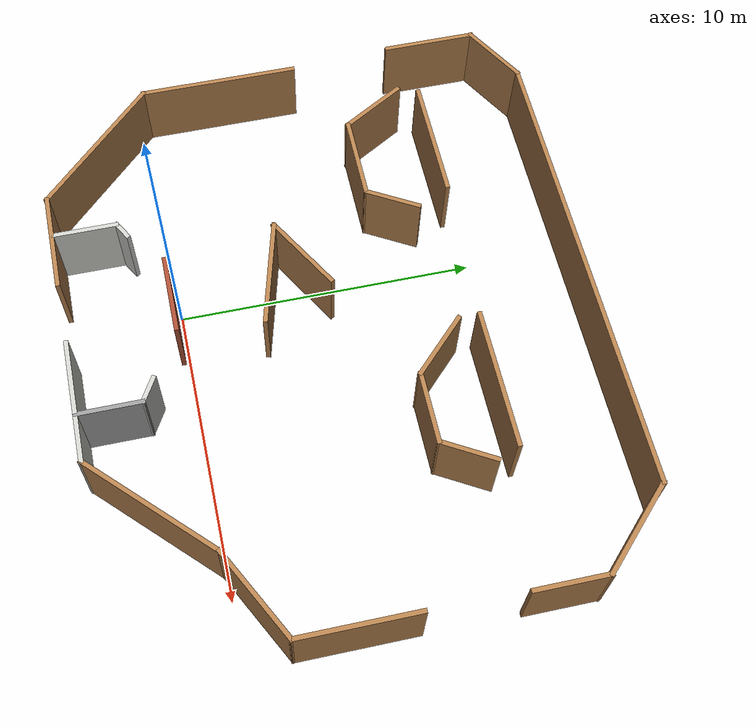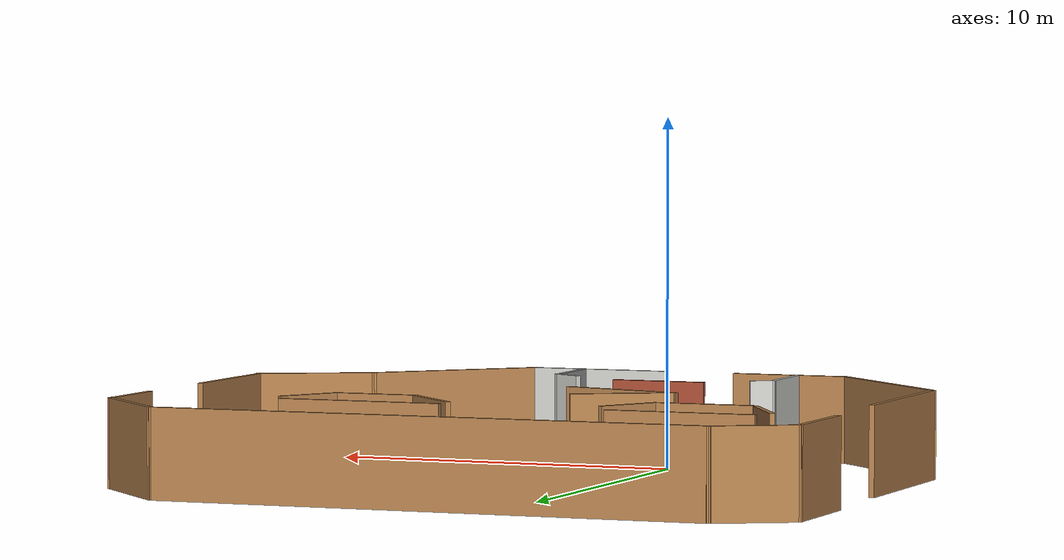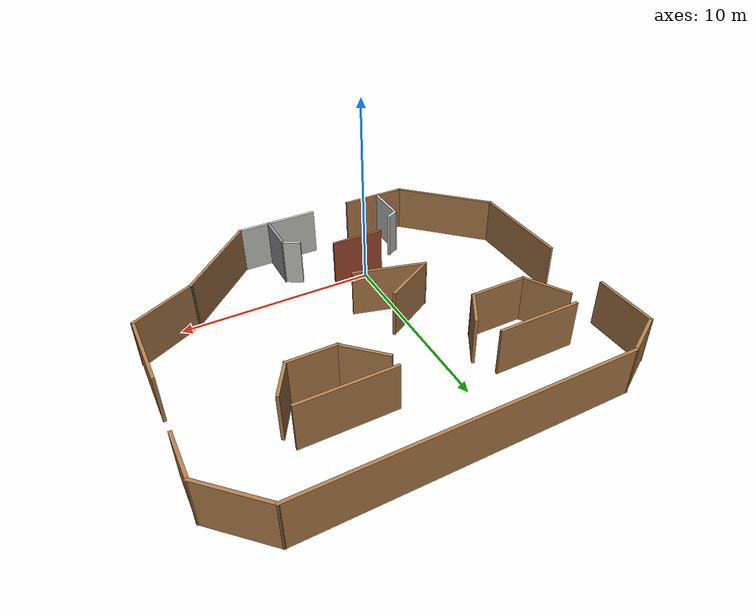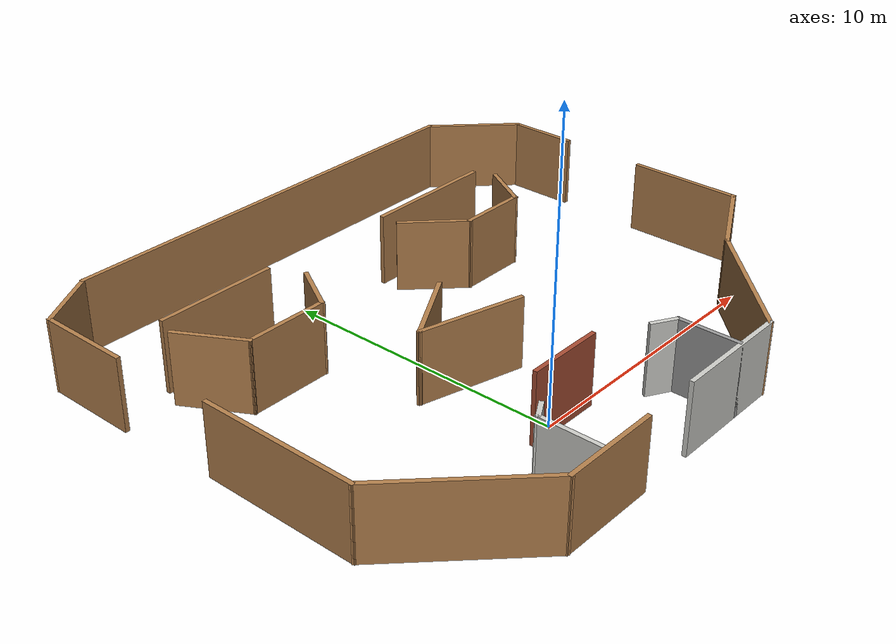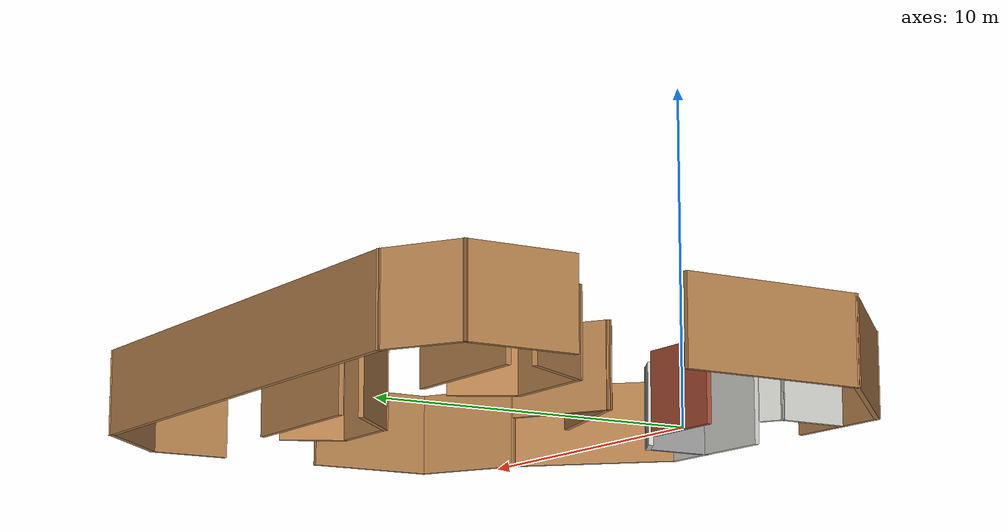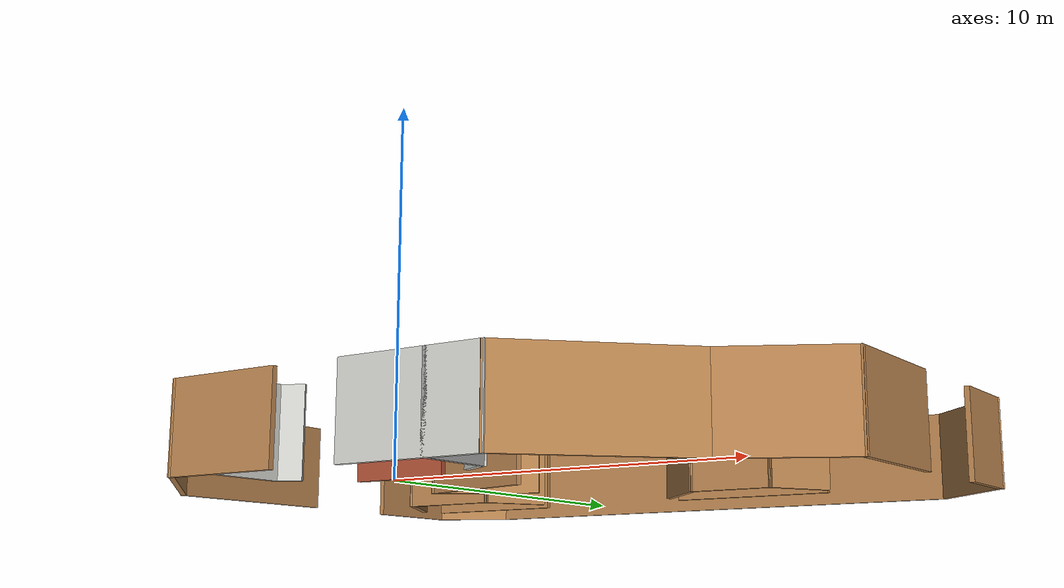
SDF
<?xml version='1.0'?>
<sdf version='1.6'>
  <model name='room.world'>
    <pose frame=''>2.04253 4.77478 0 0 -0 0</pose>
    <link name='Wall_0'>
      <collision name='Wall_0_Collision'>
        <geometry>
          <box>
            <size>3.5 0.15 2.5</size>
          </box>
        </geometry>
        <pose frame=''>0 0 1.25 0 -0 0</pose>
      </collision>
      <visual name='Wall_0_Visual'>
        <pose frame=''>0 0 1.25 0 -0 0</pose>
        <geometry>
          <box>
            <size>3.5 0.15 2.5</size>
          </box>
        </geometry>
        <material>
          <script>
            <uri>file://media/materials/scripts/gazebo.material</uri>
            <name>Gazebo/Wood</name>
          </script>
          <ambient>1 1 1 1</ambient>
        </material>
        <meta>
          <layer>0</layer>
        </meta>
      </visual>
      <pose frame=''>-4.47272 -8.46907 0 0 -0 0</pose>
    </link>
    <link name='Wall_10'>
      <collision name='Wall_10_Collision'>
        <geometry>
          <box>
            <size>2.25 0.15 2.5</size>
          </box>
        </geometry>
        <pose frame=''>0 0 1.25 0 -0 0</pose>
      </collision>
      <visual name='Wall_10_Visual'>
        <pose frame=''>0 0 1.25 0 -0 0</pose>
        <geometry>
          <box>
            <size>2.25 0.15 2.5</size>
          </box>
        </geometry>
        <material>
          <script>
            <uri>file://media/materials/scripts/gazebo.material</uri>
            <name>Gazebo/Grey</name>
          </script>
          <ambient>1 1 1 1</ambient>
        </material>
        <meta>
          <layer>0</layer>
        </meta>
      </visual>
      <pose frame=''>1.92057 -7.38968 0 0 -0 1.5708</pose>
    </link>
    <link name='Wall_12'>
      <collision name='Wall_12_Collision'>
        <geometry>
          <box>
            <size>2.25 0.15 2.5</size>
          </box>
        </geometry>
        <pose frame=''>0 0 1.25 0 -0 0</pose>
      </collision>
      <visual name='Wall_12_Visual'>
        <pose frame=''>0 0 1.25 0 -0 0</pose>
        <geometry>
          <box>
            <size>2.25 0.15 2.5</size>
          </box>
        </geometry>
        <material>
          <script>
            <uri>file://media/materials/scripts/gazebo.material</uri>
            <name>Gazebo/CeilingTiled</name>
          </script>
          <ambient>1 1 1 1</ambient>
        </material>
        <meta>
          <layer>0</layer>
        </meta>
      </visual>
      <pose frame=''>-4.67628 -7.36308 0 0 -0 1.5708</pose>
    </link>
    <link name='Wall_14'>
      <collision name='Wall_14_Collision'>
        <geometry>
          <box>
            <size>4.25 0.15 2.5</size>
          </box>
        </geometry>
        <pose frame=''>0 0 1.25 0 -0 0</pose>
      </collision>
      <visual name='Wall_14_Visual'>
        <pose frame=''>0 0 1.25 0 -0 0</pose>
        <geometry>
          <box>
            <size>4.25 0.15 2.5</size>
          </box>
        </geometry>
        <material>
          <script>
            <uri>file://media/materials/scripts/gazebo.material</uri>
            <name>Gazebo/Wood</name>
          </script>
          <ambient>1 1 1 1</ambient>
        </material>
        <meta>
          <layer>0</layer>
        </meta>
      </visual>
      <pose frame=''>-5.95198 4.81784 0 0 -0 0</pose>
    </link>
    <link name='Wall_16'>
      <collision name='Wall_16_Collision'>
        <geometry>
          <box>
            <size>4.75 0.15 2.5</size>
          </box>
        </geometry>
        <pose frame=''>0 0 1.25 0 -0 0</pose>
      </collision>
      <visual name='Wall_16_Visual'>
        <pose frame=''>0 0 1.25 0 -0 0</pose>
        <geometry>
          <box>
            <size>4.75 0.15 2.5</size>
          </box>
        </geometry>
        <material>
          <script>
            <uri>file://media/materials/scripts/gazebo.material</uri>
            <name>Gazebo/Wood</name>
          </script>
          <ambient>1 1 1 1</ambient>
        </material>
        <meta>
          <layer>0</layer>
        </meta>
      </visual>
      <pose frame=''>3.39344 4.60383 0 0 -0 0</pose>
    </link>
    <link name='Wall_19'>
      <collision name='Wall_19_Collision'>
        <geometry>
          <box>
            <size>2.5 0.15 2.5</size>
          </box>
        </geometry>
        <pose frame=''>0 0 1.25 0 -0 0</pose>
      </collision>
      <visual name='Wall_19_Visual'>
        <pose frame=''>0 0 1.25 0 -0 0</pose>
        <geometry>
          <box>
            <size>2.5 0.15 2.5</size>
          </box>
        </geometry>
        <material>
          <script>
            <uri>file://media/materials/scripts/gazebo.material</uri>
            <name>Gazebo/Wood</name>
          </script>
          <ambient>1 1 1 1</ambient>
        </material>
        <meta>
          <layer>0</layer>
        </meta>
      </visual>
      <pose frame=''>-7.682 3.10473 0 0 -0 -1.0472</pose>
    </link>
    <link name='Wall_2'>
      <collision name='Wall_2_Collision'>
        <geometry>
          <box>
            <size>4.25 0.15 2.5</size>
          </box>
        </geometry>
        <pose frame=''>0 0 1.25 0 -0 0</pose>
      </collision>
      <visual name='Wall_2_Visual'>
        <pose frame=''>0 0 1.25 0 -0 0</pose>
        <geometry>
          <box>
            <size>4.25 0.15 2.5</size>
          </box>
        </geometry>
        <material>
          <script>
            <uri>file://media/materials/scripts/gazebo.material</uri>
            <name>Gazebo/CeilingTiled</name>
          </script>
          <ambient>1 1 1 1</ambient>
        </material>
        <meta>
          <layer>0</layer>
        </meta>
      </visual>
      <pose frame=''>1.44355 -8.43968 0 0 -0 0</pose>
    </link>
    <link name='Wall_20'>
      <collision name='Wall_20_Collision'>
        <geometry>
          <box>
            <size>3 0.15 2.5</size>
          </box>
        </geometry>
        <pose frame=''>0 0 1.25 0 -0 0</pose>
      </collision>
      <visual name='Wall_20_Visual'>
        <pose frame=''>0 0 1.25 0 -0 0</pose>
        <geometry>
          <box>
            <size>3 0.15 2.5</size>
          </box>
        </geometry>
        <material>
          <script>
            <uri>file://media/materials/scripts/gazebo.material</uri>
            <name>Gazebo/Wood</name>
          </script>
          <ambient>1 1 1 1</ambient>
        </material>
        <meta>
          <layer>0</layer>
        </meta>
      </visual>
      <pose frame=''>-5.6695 2.08715 0 0 -0 0</pose>
    </link>
    <link name='Wall_21'>
      <collision name='Wall_21_Collision'>
        <geometry>
          <box>
            <size>2 0.15 2.5</size>
          </box>
        </geometry>
        <pose frame=''>0 0 1.25 0 -0 0</pose>
      </collision>
      <visual name='Wall_21_Visual'>
        <pose frame=''>0 0 1.25 0 -0 0</pose>
        <geometry>
          <box>
            <size>2 0.15 2.5</size>
          </box>
        </geometry>
        <material>
          <script>
            <uri>file://media/materials/scripts/gazebo.material</uri>
            <name>Gazebo/Wood</name>
          </script>
          <ambient>1 1 1 1</ambient>
        </material>
        <meta>
          <layer>0</layer>
        </meta>
      </visual>
      <pose frame=''>-3.782 2.88822 0 0 -0 1.0472</pose>
    </link>
    <link name='Wall_23'>
      <collision name='Wall_23_Collision'>
        <geometry>
          <box>
            <size>2.5 0.15 2.5</size>
          </box>
        </geometry>
        <pose frame=''>0 0 1.25 0 -0 0</pose>
      </collision>
      <visual name='Wall_23_Visual'>
        <pose frame=''>0 0 1.25 0 -0 0</pose>
        <geometry>
          <box>
            <size>2.5 0.15 2.5</size>
          </box>
        </geometry>
        <material>
          <script>
            <uri>file://media/materials/scripts/gazebo.material</uri>
            <name>Gazebo/Wood</name>
          </script>
          <ambient>1 1 1 1</ambient>
        </material>
        <meta>
          <layer>0</layer>
        </meta>
      </visual>
      <pose frame=''>1.92429 3.07744 0 0 -0 -0.785398</pose>
    </link>
    <link name='Wall_24'>
      <collision name='Wall_24_Collision'>
        <geometry>
          <box>
            <size>2.5 0.15 2.5</size>
          </box>
        </geometry>
        <pose frame=''>0 0 1.25 0 -0 0</pose>
      </collision>
      <visual name='Wall_24_Visual'>
        <pose frame=''>0 0 1.25 0 -0 0</pose>
        <geometry>
          <box>
            <size>2.5 0.15 2.5</size>
          </box>
        </geometry>
        <material>
          <script>
            <uri>file://media/materials/scripts/gazebo.material</uri>
            <name>Gazebo/Wood</name>
          </script>
          <ambient>1 1 1 1</ambient>
        </material>
        <meta>
          <layer>0</layer>
        </meta>
      </visual>
      <pose frame=''>3.93014 2.24659 0 0 -0 0</pose>
    </link>
    <link name='Wall_25'>
      <collision name='Wall_25_Collision'>
        <geometry>
          <box>
            <size>2 0.15 2.5</size>
          </box>
        </geometry>
        <pose frame=''>0 0 1.25 0 -0 0</pose>
      </collision>
      <visual name='Wall_25_Visual'>
        <pose frame=''>0 0 1.25 0 -0 0</pose>
        <geometry>
          <box>
            <size>2 0.15 2.5</size>
          </box>
        </geometry>
        <material>
          <script>
            <uri>file://media/materials/scripts/gazebo.material</uri>
            <name>Gazebo/Wood</name>
          </script>
          <ambient>1 1 1 1</ambient>
        </material>
        <meta>
          <layer>0</layer>
        </meta>
      </visual>
      <pose frame=''>5.56764 3.04767 0 0 -0 1.0472</pose>
    </link>
    <link name='Wall_27'>
      <collision name='Wall_27_Collision'>
        <geometry>
          <box>
            <size>3 0.15 2.5</size>
          </box>
        </geometry>
        <pose frame=''>0 0 1.25 0 -0 0</pose>
      </collision>
      <visual name='Wall_27_Visual'>
        <pose frame=''>0 0 1.25 0 -0 0</pose>
        <geometry>
          <box>
            <size>3 0.15 2.5</size>
          </box>
        </geometry>
        <material>
          <script>
            <uri>file://media/materials/scripts/gazebo.material</uri>
            <name>Gazebo/Wood</name>
          </script>
          <ambient>1 1 1 1</ambient>
        </material>
        <meta>
          <layer>0</layer>
        </meta>
      </visual>
      <pose frame=''>-2.3446 -0.488547 0 0 -0 -2.61799</pose>
    </link>
    <link name='Wall_28'>
      <collision name='Wall_28_Collision'>
        <geometry>
          <box>
            <size>3.75 0.15 2.5</size>
          </box>
        </geometry>
        <pose frame=''>0 0 1.25 0 -0 0</pose>
      </collision>
      <visual name='Wall_28_Visual'>
        <pose frame=''>0 0 1.25 0 -0 0</pose>
        <geometry>
          <box>
            <size>3.75 0.15 2.5</size>
          </box>
        </geometry>
        <material>
          <script>
            <uri>file://media/materials/scripts/gazebo.material</uri>
            <name>Gazebo/Wood</name>
          </script>
          <ambient>1 1 1 1</ambient>
        </material>
        <meta>
          <layer>0</layer>
        </meta>
      </visual>
      <pose frame=''>-1.84002 -1.66692 0 0 -0 -0.261799</pose>
    </link>
    <link name='Wall_30'>
      <collision name='Wall_30_Collision'>
        <geometry>
          <box>
            <size>0.75 0.15 2.5</size>
          </box>
        </geometry>
        <pose frame=''>0 0 1.25 0 -0 0</pose>
      </collision>
      <visual name='Wall_30_Visual'>
        <pose frame=''>0 0 1.25 0 -0 0</pose>
        <geometry>
          <box>
            <size>0.75 0.15 2.5</size>
          </box>
        </geometry>
        <material>
          <script>
            <uri>file://media/materials/scripts/gazebo.material</uri>
            <name>Gazebo/CeilingTiled</name>
          </script>
          <ambient>1 1 1 1</ambient>
        </material>
        <meta>
          <layer>0</layer>
        </meta>
      </visual>
      <pose frame=''>-4.41647 -6.16308 0 0 -0 0.523599</pose>
    </link>
    <link name='Wall_32'>
      <collision name='Wall_32_Collision'>
        <geometry>
          <box>
            <size>1 0.15 2.5</size>
          </box>
        </geometry>
        <pose frame=''>0 0 1.25 0 -0 0</pose>
      </collision>
      <visual name='Wall_32_Visual'>
        <pose frame=''>0 0 1.25 0 -0 0</pose>
        <geometry>
          <box>
            <size>1 0.15 2.5</size>
          </box>
        </geometry>
        <material>
          <script>
            <uri>file://media/materials/scripts/gazebo.material</uri>
            <name>Gazebo/CeilingTiled</name>
          </script>
          <ambient>1 1 1 1</ambient>
        </material>
        <meta>
          <layer>0</layer>
        </meta>
      </visual>
      <pose frame=''>1.55251 -6.12718 0 0 -0 2.61799</pose>
    </link>
    <link name='Wall_34'>
      <collision name='Wall_34_Collision'>
        <geometry>
          <box>
            <size>5.5 0.15 2.5</size>
          </box>
        </geometry>
        <pose frame=''>0 0 1.25 0 -0 0</pose>
      </collision>
      <visual name='Wall_34_Visual'>
        <pose frame=''>0 0 1.25 0 -0 0</pose>
        <geometry>
          <box>
            <size>5.5 0.15 2.5</size>
          </box>
        </geometry>
        <material>
          <script>
            <uri>file://media/materials/scripts/gazebo.material</uri>
            <name>Gazebo/Wood</name>
          </script>
          <ambient>1 1 1 1</ambient>
        </material>
        <meta>
          <layer>0</layer>
        </meta>
      </visual>
      <pose frame=''>-9.93074 -2.01105 0 0 -0 1.5708</pose>
    </link>
    <link name='Wall_36'>
      <collision name='Wall_36_Collision'>
        <geometry>
          <box>
            <size>3.25 0.15 2.5</size>
          </box>
        </geometry>
        <pose frame=''>0 0 1.25 0 -0 0</pose>
      </collision>
      <visual name='Wall_36_Visual'>
        <pose frame=''>0 0 1.25 0 -0 0</pose>
        <geometry>
          <box>
            <size>3.25 0.15 2.5</size>
          </box>
        </geometry>
        <material>
          <script>
            <uri>file://media/materials/scripts/gazebo.material</uri>
            <name>Gazebo/Wood</name>
          </script>
          <ambient>1 1 1 1</ambient>
        </material>
        <meta>
          <layer>0</layer>
        </meta>
      </visual>
      <pose frame=''>-10.1288 5.74407 0 0 -0 1.5708</pose>
    </link>
    <link name='Wall_37'>
      <collision name='Wall_37_Collision'>
        <geometry>
          <box>
            <size>2.5 0.15 2.5</size>
          </box>
        </geometry>
        <pose frame=''>0 0 1.25 0 -0 0</pose>
      </collision>
      <visual name='Wall_37_Visual'>
        <pose frame=''>0 0 1.25 0 -0 0</pose>
        <geometry>
          <box>
            <size>2.5 0.15 2.5</size>
          </box>
        </geometry>
        <material>
          <script>
            <uri>file://media/materials/scripts/gazebo.material</uri>
            <name>Gazebo/Wood</name>
          </script>
          <ambient>1 1 1 1</ambient>
        </material>
        <meta>
          <layer>0</layer>
        </meta>
      </visual>
      <pose frame=''>-9.11121 7.88157 0 0 -0 0.523599</pose>
    </link>
    <link name='Wall_38'>
      <collision name='Wall_38_Collision'>
        <geometry>
          <box>
            <size>16 0.15 2.5</size>
          </box>
        </geometry>
        <pose frame=''>0 0 1.25 0 -0 0</pose>
      </collision>
      <visual name='Wall_38_Visual'>
        <pose frame=''>0 0 1.25 0 -0 0</pose>
        <geometry>
          <box>
            <size>16 0.15 2.5</size>
          </box>
        </geometry>
        <material>
          <script>
            <uri>file://media/materials/scripts/gazebo.material</uri>
            <name>Gazebo/Wood</name>
          </script>
          <ambient>1 1 1 1</ambient>
        </material>
        <meta>
          <layer>0</layer>
        </meta>
      </visual>
      <pose frame=''>-0.168631 8.46907 0 0 -0 0</pose>
    </link>
    <link name='Wall_39'>
      <collision name='Wall_39_Collision'>
        <geometry>
          <box>
            <size>3.5 0.15 2.5</size>
          </box>
        </geometry>
        <pose frame=''>0 0 1.25 0 -0 0</pose>
      </collision>
      <visual name='Wall_39_Visual'>
        <pose frame=''>0 0 1.25 0 -0 0</pose>
        <geometry>
          <box>
            <size>3.5 0.15 2.5</size>
          </box>
        </geometry>
        <material>
          <script>
            <uri>file://media/materials/scripts/gazebo.material</uri>
            <name>Gazebo/Wood</name>
          </script>
          <ambient>1 1 1 1</ambient>
        </material>
        <meta>
          <layer>0</layer>
        </meta>
      </visual>
      <pose frame=''>8.94077 7.28467 0 0 -0 -0.785398</pose>
    </link>
    <link name='Wall_4'>
      <collision name='Wall_4_Collision'>
        <geometry>
          <box>
            <size>5.25 0.15 2.5</size>
          </box>
        </geometry>
        <pose frame=''>0 0 1.25 0 -0 0</pose>
      </collision>
      <visual name='Wall_4_Visual'>
        <pose frame=''>0 0 1.25 0 -0 0</pose>
        <geometry>
          <box>
            <size>5.25 0.15 2.5</size>
          </box>
        </geometry>
        <material>
          <script>
            <uri>file://media/materials/scripts/gazebo.material</uri>
            <name>Gazebo/Wood</name>
          </script>
          <ambient>1 1 1 1</ambient>
        </material>
        <meta>
          <layer>0</layer>
        </meta>
      </visual>
      <pose frame=''>5.29668 -6.63655 0 0 -0 0.785398</pose>
    </link>
    <link name='Wall_40'>
      <collision name='Wall_40_Collision'>
        <geometry>
          <box>
            <size>2.5 0.15 2.5</size>
          </box>
        </geometry>
        <pose frame=''>0 0 1.25 0 -0 0</pose>
      </collision>
      <visual name='Wall_40_Visual'>
        <pose frame=''>0 0 1.25 0 -0 0</pose>
        <geometry>
          <box>
            <size>2.5 0.15 2.5</size>
          </box>
        </geometry>
        <material>
          <script>
            <uri>file://media/materials/scripts/gazebo.material</uri>
            <name>Gazebo/Wood</name>
          </script>
          <ambient>1 1 1 1</ambient>
        </material>
        <meta>
          <layer>0</layer>
        </meta>
      </visual>
      <pose frame=''>10.1252 4.92526 0 0 -0 -1.5708</pose>
    </link>
    <link name='Wall_42'>
      <collision name='Wall_42_Collision'>
        <geometry>
          <box>
            <size>4 0.15 2.5</size>
          </box>
        </geometry>
        <pose frame=''>0 0 1.25 0 -0 0</pose>
      </collision>
      <visual name='Wall_42_Visual'>
        <pose frame=''>0 0 1.25 0 -0 0</pose>
        <geometry>
          <box>
            <size>4 0.15 2.5</size>
          </box>
        </geometry>
        <material>
          <script>
            <uri>file://media/materials/scripts/gazebo.material</uri>
            <name>Gazebo/Wood</name>
          </script>
          <ambient>1 1 1 1</ambient>
        </material>
        <meta>
          <layer>0</layer>
        </meta>
      </visual>
      <pose frame=''>10.0524 -1.36107 0 0 -0 -1.5708</pose>
    </link>
    <link name='Wall_43'>
      <collision name='Wall_43_Collision'>
        <geometry>
          <box>
            <size>3.48345 0.15 2.5</size>
          </box>
        </geometry>
        <pose frame=''>0 0 1.25 0 -0 0</pose>
      </collision>
      <visual name='Wall_43_Visual'>
        <pose frame=''>0 0 1.25 0 -0 0</pose>
        <geometry>
          <box>
            <size>3.48345 0.15 2.5</size>
          </box>
        </geometry>
        <material>
          <script>
            <uri>file://media/materials/scripts/gazebo.material</uri>
            <name>Gazebo/Wood</name>
          </script>
          <ambient>1 1 1 1</ambient>
        </material>
        <meta>
          <layer>0</layer>
        </meta>
      </visual>
      <pose frame=''>8.57608 -4.05975 0 0 -0 -2.65887</pose>
    </link>
    <link name='Wall_6'>
      <collision name='Wall_6_Collision'>
        <geometry>
          <box>
            <size>5.5 0.15 2.5</size>
          </box>
        </geometry>
        <pose frame=''>0 0 1.25 0 -0 0</pose>
      </collision>
      <visual name='Wall_6_Visual'>
        <pose frame=''>0 0 1.25 0 -0 0</pose>
        <geometry>
          <box>
            <size>5.5 0.15 2.5</size>
          </box>
        </geometry>
        <material>
          <script>
            <uri>file://media/materials/scripts/gazebo.material</uri>
            <name>Gazebo/Wood</name>
          </script>
          <ambient>1 1 1 1</ambient>
        </material>
        <meta>
          <layer>0</layer>
        </meta>
      </visual>
      <pose frame=''>-8.03923 -6.57756 0 0 -0 2.35619</pose>
    </link>
    <link name='Wall_8'>
      <collision name='Wall_8_Collision'>
        <geometry>
          <box>
            <size>2.75 0.15 2.5</size>
          </box>
        </geometry>
        <pose frame=''>0 0 1.25 0 -0 0</pose>
      </collision>
      <visual name='Wall_8_Visual'>
        <pose frame=''>0 0 1.25 0 -0 0</pose>
        <geometry>
          <box>
            <size>2.75 0.15 2.5</size>
          </box>
        </geometry>
        <material>
          <script>
            <uri>file://media/materials/scripts/gazebo.material</uri>
            <name>Gazebo/Bricks</name>
          </script>
          <ambient>1 1 1 1</ambient>
        </material>
        <meta>
          <layer>0</layer>
        </meta>
      </visual>
      <pose frame=''>-1.70046 -4.95505 0 0 -0 0</pose>
    </link>
    <static>1</static>
  </model>
</sdf>
